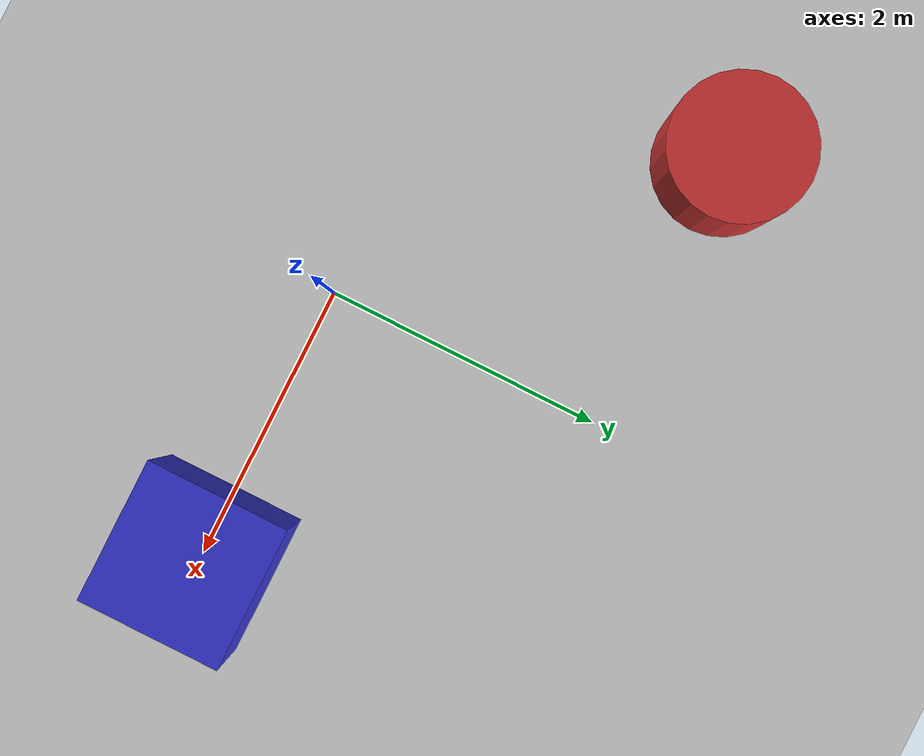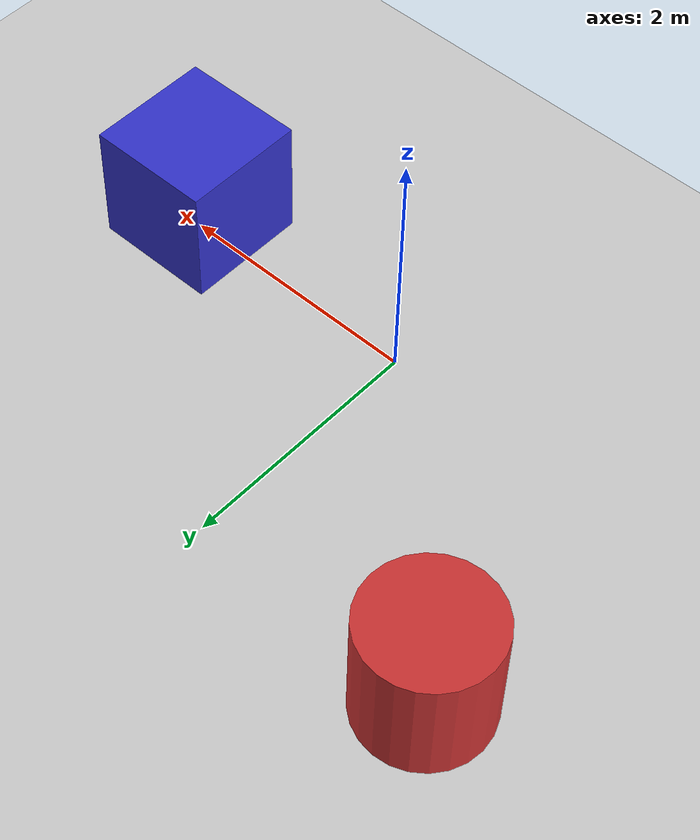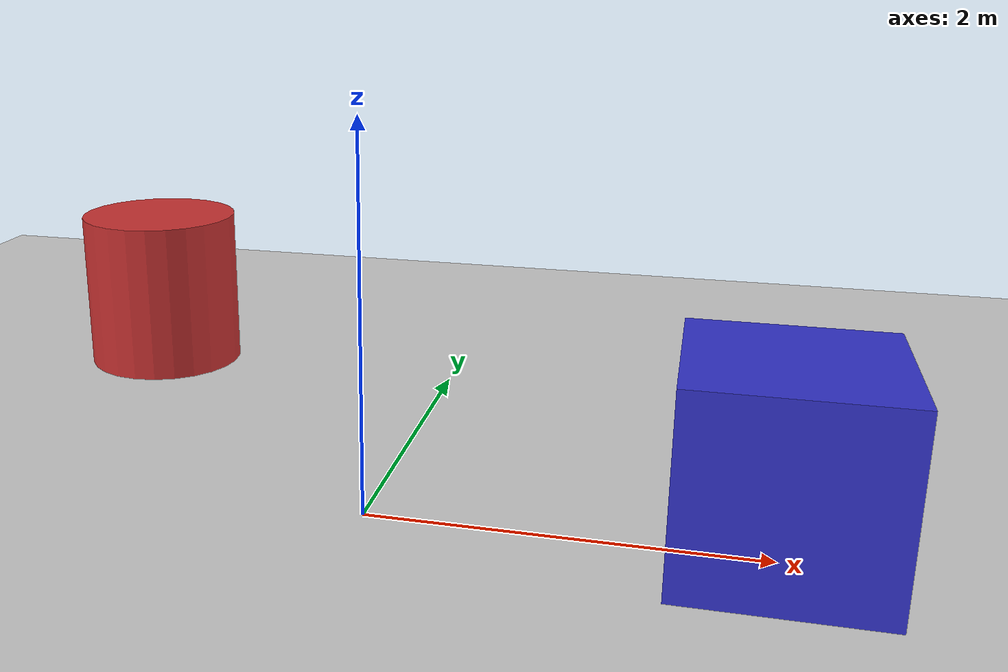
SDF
<?xml version="1.0" ?>
<sdf version="1.6">
  <world name="titanfall_test_environment">

    <!-- Global light source -->
    <light name="sun" type="directional">
      <cast_shadows>true</cast_shadows>
      <pose>0 0 10 0 0 0</pose>
      <diffuse>0.8 0.8 0.8 1</diffuse>
      <specular>0.2 0.2 0.2 1</specular>
      <attenuation>
        <range>1000</range>
        <constant>0.9</constant>
        <linear>0.01</linear>
        <quadratic>0.001</quadratic>
      </attenuation>
      <direction>-0.5 0.1 -0.9</direction>
    </light>

    <!-- Ground plane -->
    <model name="ground_plane">
      <static>true</static>
      <link name="link">
        <collision name="collision">
          <geometry>
            <plane>
              <normal>0 0 1</normal>
              <size>100 100</size>
            </plane>
          </geometry>
        </collision>
        <visual name="visual">
          <geometry>
            <plane>
              <normal>0 0 1</normal>
              <size>100 100</size>
            </plane>
          </geometry>
          <material>
            <ambient>0.8 0.8 0.8 1</ambient>
            <diffuse>0.8 0.8 0.8 1</diffuse>
            <specular>0.8 0.8 0.8 1</specular>
          </material>
        </visual>
      </link>
    </model>

    <!-- Test obstacles -->
    <model name="obstacle_1">
      <pose>2 0 0.5 0 0 0</pose>
      <static>true</static>
      <link name="link">
        <collision name="collision">
          <geometry>
            <box>
              <size>1 1 1</size>
            </box>
          </geometry>
        </collision>
        <visual name="visual">
          <geometry>
            <box>
              <size>1 1 1</size>
            </box>
          </geometry>
          <material>
            <ambient>0.2 0.2 0.8 1</ambient>
            <diffuse>0.2 0.2 0.8 1</diffuse>
            <specular>0.2 0.2 0.8 1</specular>
          </material>
        </visual>
      </link>
    </model>

    <model name="obstacle_2">
      <pose>-2 2 0.5 0 0 0</pose>
      <static>true</static>
      <link name="link">
        <collision name="collision">
          <geometry>
            <cylinder>
              <radius>0.5</radius>
              <length>1</length>
            </cylinder>
          </geometry>
        </collision>
        <visual name="visual">
          <geometry>
            <cylinder>
              <radius>0.5</radius>
              <length>1</length>
            </cylinder>
          </geometry>
          <material>
            <ambient>0.8 0.2 0.2 1</ambient>
            <diffuse>0.8 0.2 0.2 1</diffuse>
            <specular>0.8 0.2 0.2 1</specular>
          </material>
        </visual>
      </link>
    </model>

    <!-- Physics settings -->
    <physics name="default_physics" default="0" type="ode">
      <gravity>0 0 -9.8066</gravity>
      <ode>
        <solver>
          <type>quick</type>
          <iters>150</iters>
          <precon_iters>0</precon_iters>
          <sor>1.400000</sor>
          <use_dynamic_moi_rescaling>1</use_dynamic_moi_rescaling>
        </solver>
        <constraints>
          <cfm>0.00001</cfm>
          <erp>0.2</erp>
          <contact_max_correcting_vel>2000.000000</contact_max_correcting_vel>
          <contact_surface_layer>0.01000</contact_surface_layer>
        </constraints>
      </ode>
      <max_step_size>0.004</max_step_size>
      <real_time_factor>1</real_time_factor>
      <real_time_update_rate>250</real_time_update_rate>
      <max_contacts>20</max_contacts>
    </physics>

    <!-- Scene settings -->
    <scene>
      <ambient>0.4 0.4 0.4 1</ambient>
      <background>0.7 0.7 0.7 1</background>
      <shadows>true</shadows>
    </scene>

    <!-- GUI settings -->
    <gui fullscreen='0'>
      <camera name='user_camera'>
        <pose frame=''>5 -5 2 0 0.275643 2.35619</pose>
        <view_controller>orbit</view_controller>
        <projection_type>perspective</projection_type>
      </camera>
    </gui>

  </world>
</sdf>
